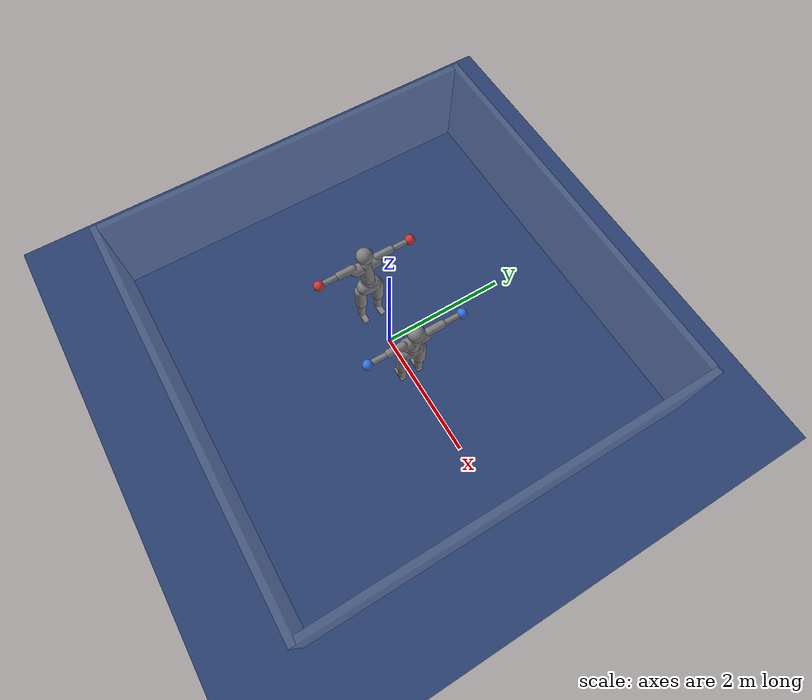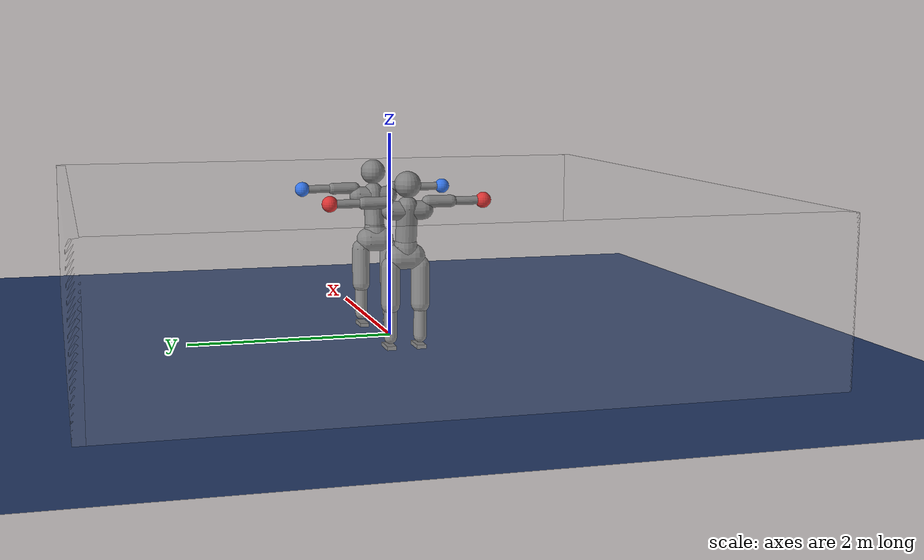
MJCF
<mujoco model="grandma_spar">
  <compiler angle="degree" inertiafromgeom="true" autolimits="true"/>
  <option timestep="0.005" iterations="10" ls_iterations="10" integrator="implicitfast">
    <flag eulerdamp="disable"/>
  </option>
  <default>
    <geom contype="1" conaffinity="1" condim="3" friction="1.0 0.005 0.0001" density="1000" margin="0"/>
    <joint limited="true"/>
    <position ctrllimited="true"/>
  </default>
  <asset>
    <texture name="grid" type="2d" builtin="checker" rgb1=".18 .28 .48" rgb2=".14 .22 .40" width="300" height="300"/>
    <material name="grid" texture="grid" texrepeat="6 6" reflectance="0"/>
  </asset>
  <worldbody>
    <light pos="0 0 5" dir="0 0 -1" directional="true"/>
    <geom name="floor" type="plane" size="0 0 0.05" material="grid" friction="1.0 0.005 0.0001"/>
    <geom name="rope_n" type="box" pos="0.0000 3.1000 0.7500" size="3.1500 0.0500 0.7500" rgba="0.8 0.8 0.8 0.15"/>
    <geom name="rope_s" type="box" pos="0.0000 -3.1000 0.7500" size="3.1500 0.0500 0.7500" rgba="0.8 0.8 0.8 0.15"/>
    <geom name="rope_e" type="box" pos="3.1000 0.0000 0.7500" size="0.0500 3.1500 0.7500" rgba="0.8 0.8 0.8 0.15"/>
    <geom name="rope_w" type="box" pos="-3.1000 0.0000 0.7500" size="0.0500 3.1500 0.7500" rgba="0.8 0.8 0.8 0.15"/>
    <body name="a_pelvis" pos="-0.6000 0.0000 0.8758" quat="1.00000 0 0 0.00000">
      <freejoint name="a_root"/>
      <geom name="a_pelvis_geom" type="capsule" fromto="0.0000 -0.0700 0.0000 0.0000 0.0700 0.0000" size="0.1216" mass="7.2734" />
      <geom name="a_pelvis_up" type="capsule" fromto="0.0000 0.0000 0.0000 -0.0203 0.0000 0.1106" size="0.1094" mass="5.0380" />
      <body name="a_torso" pos="-0.0203 0.0000 0.1306">
        <joint name="a_abdomen_z" type="hinge" axis="0 0 1" range="-45 45" damping="0.5" armature="0.08" stiffness="0"/>
        <joint name="a_abdomen_y" type="hinge" axis="0 1 0" range="-60 30" damping="0.5" armature="0.08" stiffness="0"/>
        <joint name="a_abdomen_x" type="hinge" axis="1 0 0" range="-35 35" damping="0.5" armature="0.08" stiffness="0"/>
        <geom name="a_torso_geom" type="capsule" fromto="0.0000 0.0000 0.0200 -0.0561 0.0000 0.3509" size="0.1004" mass="30.7785" />
        <geom name="a_chest_geom" type="capsule" fromto="-0.0509 -0.1584 0.3169 -0.0509 0.1584 0.3169" size="0.0904" mass="0.5"/>
        <geom name="a_head_geom" type="sphere" pos="-0.0666 0.0000 0.5613" size="0.1250" mass="7.0227" />
        <body name="a_upper_arm_l" pos="-0.0636 0.1980 0.3961">
          <joint name="a_shoulder_x_l" type="hinge" axis="1 0 0" range="-170 30" damping="0.5" armature="0.03" stiffness="0"/>
          <joint name="a_shoulder_z_l" type="hinge" axis="0 0 1" range="-110 110" damping="0.5" armature="0.03" stiffness="0"/>
          <geom name="a_upper_arm_l_geom" type="capsule" fromto="0.0000 0.0000 0.0000 0.0000 0.2236 0.0000" size="0.0580" mass="2.4276" />
          <body name="a_forearm_l" pos="0.0000 0.2236 0.0000">
            <joint name="a_elbow_l" type="hinge" axis="0 0 1" range="-150 0" damping="0.5" armature="0.02" stiffness="0"/>
            <geom name="a_forearm_l_geom" type="capsule" fromto="0.0000 0.0000 0.0000 0.0000 0.2519 0.0000" size="0.0402" mass="1.3872" />
            <geom name="a_glove_l" type="sphere" pos="0.0000 0.3194 0.0000" size="0.0750" mass="0.8032" rgba="0.85 0.2 0.2 1"/>
          </body>
        </body>
        <body name="a_upper_arm_r" pos="-0.0636 -0.1980 0.3961">
          <joint name="a_shoulder_x_r" type="hinge" axis="1 0 0" range="-30 170" damping="0.5" armature="0.03" stiffness="0"/>
          <joint name="a_shoulder_z_r" type="hinge" axis="0 0 1" range="-110 110" damping="0.5" armature="0.03" stiffness="0"/>
          <geom name="a_upper_arm_r_geom" type="capsule" fromto="0.0000 0.0000 0.0000 0.0000 -0.2236 0.0000" size="0.0580" mass="2.4276" />
          <body name="a_forearm_r" pos="0.0000 -0.2236 0.0000">
            <joint name="a_elbow_r" type="hinge" axis="0 0 1" range="0 150" damping="0.5" armature="0.02" stiffness="0"/>
            <geom name="a_forearm_r_geom" type="capsule" fromto="0.0000 0.0000 0.0000 0.0000 -0.2519 0.0000" size="0.0402" mass="1.3872" />
            <geom name="a_glove_r" type="sphere" pos="0.0000 -0.3194 0.0000" size="0.0750" mass="0.8032" rgba="0.85 0.2 0.2 1"/>
          </body>
        </body>
      </body>
      <body name="a_thigh_l" pos="-0.0109 0.1457 -0.0890">
        <joint name="a_hip_x_l" type="hinge" axis="1 0 0" range="-40 40" damping="0.5" armature="0.1" stiffness="0"/>
        <joint name="a_hip_z_l" type="hinge" axis="0 0 1" range="-35 35" damping="0.5" armature="0.1" stiffness="0"/>
        <joint name="a_hip_y_l" type="hinge" axis="0 1 0" range="-120 30" damping="0.5" armature="0.1" stiffness="0"/>
        <geom name="a_thigh_l_geom" type="capsule" fromto="0.0000 0.0000 0.0000 0.0000 0.0000 -0.3653" size="0.0900" mass="8.6700" />
        <body name="a_shin_l" pos="0.0000 0.0000 -0.3653">
          <joint name="a_knee_l" type="hinge" axis="0 1 0" range="0 150" damping="0.5" armature="0.1" stiffness="0"/>
          <geom name="a_shin_l_geom" type="capsule" fromto="0.0000 0.0000 0.0000 0.0000 0.0000 -0.3152" size="0.0620" mass="4.0316" />
          <body name="a_foot_l" pos="0.0000 0.0000 -0.3152">
            <joint name="a_ankle_y_l" type="hinge" axis="0 1 0" range="-20 50" damping="0.5" armature="0.03" stiffness="0"/>
            <joint name="a_ankle_x_l" type="hinge" axis="1 0 0" range="-25 25" damping="0.5" armature="0.03" stiffness="0"/>
            <geom name="a_foot_l_geom" type="box" pos="0.0506 0.0000 -0.1050" size="0.1100 0.0450 0.0280" mass="1.2572" friction="1.0 0.005 0.0001"/>
            <site name="a_foot_l_site" pos="0.0506 0.0000 -0.1050" size="0.01"/>
          </body>
        </body>
      </body>
      <body name="a_thigh_r" pos="-0.0109 -0.1457 -0.0890">
        <joint name="a_hip_x_r" type="hinge" axis="1 0 0" range="-40 40" damping="0.5" armature="0.1" stiffness="0"/>
        <joint name="a_hip_z_r" type="hinge" axis="0 0 1" range="-35 35" damping="0.5" armature="0.1" stiffness="0"/>
        <joint name="a_hip_y_r" type="hinge" axis="0 1 0" range="-120 30" damping="0.5" armature="0.1" stiffness="0"/>
        <geom name="a_thigh_r_geom" type="capsule" fromto="0.0000 0.0000 0.0000 0.0000 0.0000 -0.3653" size="0.0900" mass="8.6700" />
        <body name="a_shin_r" pos="0.0000 0.0000 -0.3653">
          <joint name="a_knee_r" type="hinge" axis="0 1 0" range="0 150" damping="0.5" armature="0.1" stiffness="0"/>
          <geom name="a_shin_r_geom" type="capsule" fromto="0.0000 0.0000 0.0000 0.0000 0.0000 -0.3152" size="0.0620" mass="4.0316" />
          <body name="a_foot_r" pos="0.0000 0.0000 -0.3152">
            <joint name="a_ankle_y_r" type="hinge" axis="0 1 0" range="-20 50" damping="0.5" armature="0.03" stiffness="0"/>
            <joint name="a_ankle_x_r" type="hinge" axis="1 0 0" range="-25 25" damping="0.5" armature="0.03" stiffness="0"/>
            <geom name="a_foot_r_geom" type="box" pos="0.0506 0.0000 -0.1050" size="0.1100 0.0450 0.0280" mass="1.2572" friction="1.0 0.005 0.0001"/>
            <site name="a_foot_r_site" pos="0.0506 0.0000 -0.1050" size="0.01"/>
          </body>
        </body>
      </body>
    </body>
    <body name="b_pelvis" pos="0.6000 0.0000 0.8758" quat="0.00000 0 0 1.00000">
      <freejoint name="b_root"/>
      <geom name="b_pelvis_geom" type="capsule" fromto="0.0000 -0.0700 0.0000 0.0000 0.0700 0.0000" size="0.1216" mass="7.2734" />
      <geom name="b_pelvis_up" type="capsule" fromto="0.0000 0.0000 0.0000 -0.0203 0.0000 0.1106" size="0.1094" mass="5.0380" />
      <body name="b_torso" pos="-0.0203 0.0000 0.1306">
        <joint name="b_abdomen_z" type="hinge" axis="0 0 1" range="-45 45" damping="0.5" armature="0.08" stiffness="0"/>
        <joint name="b_abdomen_y" type="hinge" axis="0 1 0" range="-60 30" damping="0.5" armature="0.08" stiffness="0"/>
        <joint name="b_abdomen_x" type="hinge" axis="1 0 0" range="-35 35" damping="0.5" armature="0.08" stiffness="0"/>
        <geom name="b_torso_geom" type="capsule" fromto="0.0000 0.0000 0.0200 -0.0561 0.0000 0.3509" size="0.1004" mass="30.7785" />
        <geom name="b_chest_geom" type="capsule" fromto="-0.0509 -0.1584 0.3169 -0.0509 0.1584 0.3169" size="0.0904" mass="0.5"/>
        <geom name="b_head_geom" type="sphere" pos="-0.0666 0.0000 0.5613" size="0.1250" mass="7.0227" />
        <body name="b_upper_arm_l" pos="-0.0636 0.1980 0.3961">
          <joint name="b_shoulder_x_l" type="hinge" axis="1 0 0" range="-170 30" damping="0.5" armature="0.03" stiffness="0"/>
          <joint name="b_shoulder_z_l" type="hinge" axis="0 0 1" range="-110 110" damping="0.5" armature="0.03" stiffness="0"/>
          <geom name="b_upper_arm_l_geom" type="capsule" fromto="0.0000 0.0000 0.0000 0.0000 0.2236 0.0000" size="0.0580" mass="2.4276" />
          <body name="b_forearm_l" pos="0.0000 0.2236 0.0000">
            <joint name="b_elbow_l" type="hinge" axis="0 0 1" range="-150 0" damping="0.5" armature="0.02" stiffness="0"/>
            <geom name="b_forearm_l_geom" type="capsule" fromto="0.0000 0.0000 0.0000 0.0000 0.2519 0.0000" size="0.0402" mass="1.3872" />
            <geom name="b_glove_l" type="sphere" pos="0.0000 0.3194 0.0000" size="0.0750" mass="0.8032" rgba="0.2 0.45 0.9 1"/>
          </body>
        </body>
        <body name="b_upper_arm_r" pos="-0.0636 -0.1980 0.3961">
          <joint name="b_shoulder_x_r" type="hinge" axis="1 0 0" range="-30 170" damping="0.5" armature="0.03" stiffness="0"/>
          <joint name="b_shoulder_z_r" type="hinge" axis="0 0 1" range="-110 110" damping="0.5" armature="0.03" stiffness="0"/>
          <geom name="b_upper_arm_r_geom" type="capsule" fromto="0.0000 0.0000 0.0000 0.0000 -0.2236 0.0000" size="0.0580" mass="2.4276" />
          <body name="b_forearm_r" pos="0.0000 -0.2236 0.0000">
            <joint name="b_elbow_r" type="hinge" axis="0 0 1" range="0 150" damping="0.5" armature="0.02" stiffness="0"/>
            <geom name="b_forearm_r_geom" type="capsule" fromto="0.0000 0.0000 0.0000 0.0000 -0.2519 0.0000" size="0.0402" mass="1.3872" />
            <geom name="b_glove_r" type="sphere" pos="0.0000 -0.3194 0.0000" size="0.0750" mass="0.8032" rgba="0.2 0.45 0.9 1"/>
          </body>
        </body>
      </body>
      <body name="b_thigh_l" pos="-0.0109 0.1457 -0.0890">
        <joint name="b_hip_x_l" type="hinge" axis="1 0 0" range="-40 40" damping="0.5" armature="0.1" stiffness="0"/>
        <joint name="b_hip_z_l" type="hinge" axis="0 0 1" range="-35 35" damping="0.5" armature="0.1" stiffness="0"/>
        <joint name="b_hip_y_l" type="hinge" axis="0 1 0" range="-120 30" damping="0.5" armature="0.1" stiffness="0"/>
        <geom name="b_thigh_l_geom" type="capsule" fromto="0.0000 0.0000 0.0000 0.0000 0.0000 -0.3653" size="0.0900" mass="8.6700" />
        <body name="b_shin_l" pos="0.0000 0.0000 -0.3653">
          <joint name="b_knee_l" type="hinge" axis="0 1 0" range="0 150" damping="0.5" armature="0.1" stiffness="0"/>
          <geom name="b_shin_l_geom" type="capsule" fromto="0.0000 0.0000 0.0000 0.0000 0.0000 -0.3152" size="0.0620" mass="4.0316" />
          <body name="b_foot_l" pos="0.0000 0.0000 -0.3152">
            <joint name="b_ankle_y_l" type="hinge" axis="0 1 0" range="-20 50" damping="0.5" armature="0.03" stiffness="0"/>
            <joint name="b_ankle_x_l" type="hinge" axis="1 0 0" range="-25 25" damping="0.5" armature="0.03" stiffness="0"/>
            <geom name="b_foot_l_geom" type="box" pos="0.0506 0.0000 -0.1050" size="0.1100 0.0450 0.0280" mass="1.2572" friction="1.0 0.005 0.0001"/>
            <site name="b_foot_l_site" pos="0.0506 0.0000 -0.1050" size="0.01"/>
          </body>
        </body>
      </body>
      <body name="b_thigh_r" pos="-0.0109 -0.1457 -0.0890">
        <joint name="b_hip_x_r" type="hinge" axis="1 0 0" range="-40 40" damping="0.5" armature="0.1" stiffness="0"/>
        <joint name="b_hip_z_r" type="hinge" axis="0 0 1" range="-35 35" damping="0.5" armature="0.1" stiffness="0"/>
        <joint name="b_hip_y_r" type="hinge" axis="0 1 0" range="-120 30" damping="0.5" armature="0.1" stiffness="0"/>
        <geom name="b_thigh_r_geom" type="capsule" fromto="0.0000 0.0000 0.0000 0.0000 0.0000 -0.3653" size="0.0900" mass="8.6700" />
        <body name="b_shin_r" pos="0.0000 0.0000 -0.3653">
          <joint name="b_knee_r" type="hinge" axis="0 1 0" range="0 150" damping="0.5" armature="0.1" stiffness="0"/>
          <geom name="b_shin_r_geom" type="capsule" fromto="0.0000 0.0000 0.0000 0.0000 0.0000 -0.3152" size="0.0620" mass="4.0316" />
          <body name="b_foot_r" pos="0.0000 0.0000 -0.3152">
            <joint name="b_ankle_y_r" type="hinge" axis="0 1 0" range="-20 50" damping="0.5" armature="0.03" stiffness="0"/>
            <joint name="b_ankle_x_r" type="hinge" axis="1 0 0" range="-25 25" damping="0.5" armature="0.03" stiffness="0"/>
            <geom name="b_foot_r_geom" type="box" pos="0.0506 0.0000 -0.1050" size="0.1100 0.0450 0.0280" mass="1.2572" friction="1.0 0.005 0.0001"/>
            <site name="b_foot_r_site" pos="0.0506 0.0000 -0.1050" size="0.01"/>
          </body>
        </body>
      </body>
    </body>
  </worldbody>
  <contact>
    <exclude body1="a_pelvis" body2="a_torso"/>
    <exclude body1="a_pelvis" body2="a_thigh_l"/>
    <exclude body1="a_thigh_l" body2="a_shin_l"/>
    <exclude body1="a_shin_l" body2="a_foot_l"/>
    <exclude body1="a_torso" body2="a_upper_arm_l"/>
    <exclude body1="a_upper_arm_l" body2="a_forearm_l"/>
    <exclude body1="a_pelvis" body2="a_thigh_r"/>
    <exclude body1="a_thigh_r" body2="a_shin_r"/>
    <exclude body1="a_shin_r" body2="a_foot_r"/>
    <exclude body1="a_torso" body2="a_upper_arm_r"/>
    <exclude body1="a_upper_arm_r" body2="a_forearm_r"/>
    <exclude body1="b_pelvis" body2="b_torso"/>
    <exclude body1="b_pelvis" body2="b_thigh_l"/>
    <exclude body1="b_thigh_l" body2="b_shin_l"/>
    <exclude body1="b_shin_l" body2="b_foot_l"/>
    <exclude body1="b_torso" body2="b_upper_arm_l"/>
    <exclude body1="b_upper_arm_l" body2="b_forearm_l"/>
    <exclude body1="b_pelvis" body2="b_thigh_r"/>
    <exclude body1="b_thigh_r" body2="b_shin_r"/>
    <exclude body1="b_shin_r" body2="b_foot_r"/>
    <exclude body1="b_torso" body2="b_upper_arm_r"/>
    <exclude body1="b_upper_arm_r" body2="b_forearm_r"/>
  </contact>
  <actuator>
    <position name="a_abdomen_z" joint="a_abdomen_z" kp="238.05" kv="11.109" forcerange="-89.93 89.93" ctrlrange="-0.7854 0.7854"/>
    <position name="a_abdomen_y" joint="a_abdomen_y" kp="238.05" kv="11.109" forcerange="-89.93 89.93" ctrlrange="-1.0472 0.5236"/>
    <position name="a_abdomen_x" joint="a_abdomen_x" kp="238.05" kv="11.109" forcerange="-89.93 89.93" ctrlrange="-0.6109 0.6109"/>
    <position name="a_shoulder_x_l" joint="a_shoulder_x_l" kp="84.64" kv="4.232" forcerange="-52.9 52.9" ctrlrange="-2.9671 0.5236"/>
    <position name="a_shoulder_z_l" joint="a_shoulder_z_l" kp="84.64" kv="4.232" forcerange="-52.9 52.9" ctrlrange="-1.9199 1.9199"/>
    <position name="a_elbow_l" joint="a_elbow_l" kp="58.19" kv="2.909" forcerange="-37.03 37.03" ctrlrange="-2.6180 0.0000"/>
    <position name="a_shoulder_x_r" joint="a_shoulder_x_r" kp="84.64" kv="4.232" forcerange="-52.9 52.9" ctrlrange="-0.5236 2.9671"/>
    <position name="a_shoulder_z_r" joint="a_shoulder_z_r" kp="84.64" kv="4.232" forcerange="-52.9 52.9" ctrlrange="-1.9199 1.9199"/>
    <position name="a_elbow_r" joint="a_elbow_r" kp="58.19" kv="2.909" forcerange="-37.03 37.03" ctrlrange="0.0000 2.6180"/>
    <position name="a_hip_x_l" joint="a_hip_x_l" kp="317.4" kv="15.87" forcerange="-126.96 126.96" ctrlrange="-0.6981 0.6981"/>
    <position name="a_hip_z_l" joint="a_hip_z_l" kp="317.4" kv="15.87" forcerange="-126.96 126.96" ctrlrange="-0.6109 0.6109"/>
    <position name="a_hip_y_l" joint="a_hip_y_l" kp="317.4" kv="15.87" forcerange="-126.96 126.96" ctrlrange="-2.0944 0.5236"/>
    <position name="a_knee_l" joint="a_knee_l" kp="317.4" kv="15.87" forcerange="-137.54 137.54" ctrlrange="0.0000 2.6180"/>
    <position name="a_ankle_y_l" joint="a_ankle_y_l" kp="396.75" kv="15.87" forcerange="-116.38 116.38" ctrlrange="-0.3491 0.8727"/>
    <position name="a_ankle_x_l" joint="a_ankle_x_l" kp="42.32" kv="2.116" forcerange="-31.74 31.74" ctrlrange="-0.4363 0.4363"/>
    <position name="a_hip_x_r" joint="a_hip_x_r" kp="317.4" kv="15.87" forcerange="-126.96 126.96" ctrlrange="-0.6981 0.6981"/>
    <position name="a_hip_z_r" joint="a_hip_z_r" kp="317.4" kv="15.87" forcerange="-126.96 126.96" ctrlrange="-0.6109 0.6109"/>
    <position name="a_hip_y_r" joint="a_hip_y_r" kp="317.4" kv="15.87" forcerange="-126.96 126.96" ctrlrange="-2.0944 0.5236"/>
    <position name="a_knee_r" joint="a_knee_r" kp="317.4" kv="15.87" forcerange="-137.54 137.54" ctrlrange="0.0000 2.6180"/>
    <position name="a_ankle_y_r" joint="a_ankle_y_r" kp="396.75" kv="15.87" forcerange="-116.38 116.38" ctrlrange="-0.3491 0.8727"/>
    <position name="a_ankle_x_r" joint="a_ankle_x_r" kp="42.32" kv="2.116" forcerange="-31.74 31.74" ctrlrange="-0.4363 0.4363"/>
    <position name="b_abdomen_z" joint="b_abdomen_z" kp="238.05" kv="11.109" forcerange="-89.93 89.93" ctrlrange="-0.7854 0.7854"/>
    <position name="b_abdomen_y" joint="b_abdomen_y" kp="238.05" kv="11.109" forcerange="-89.93 89.93" ctrlrange="-1.0472 0.5236"/>
    <position name="b_abdomen_x" joint="b_abdomen_x" kp="238.05" kv="11.109" forcerange="-89.93 89.93" ctrlrange="-0.6109 0.6109"/>
    <position name="b_shoulder_x_l" joint="b_shoulder_x_l" kp="84.64" kv="4.232" forcerange="-52.9 52.9" ctrlrange="-2.9671 0.5236"/>
    <position name="b_shoulder_z_l" joint="b_shoulder_z_l" kp="84.64" kv="4.232" forcerange="-52.9 52.9" ctrlrange="-1.9199 1.9199"/>
    <position name="b_elbow_l" joint="b_elbow_l" kp="58.19" kv="2.909" forcerange="-37.03 37.03" ctrlrange="-2.6180 0.0000"/>
    <position name="b_shoulder_x_r" joint="b_shoulder_x_r" kp="84.64" kv="4.232" forcerange="-52.9 52.9" ctrlrange="-0.5236 2.9671"/>
    <position name="b_shoulder_z_r" joint="b_shoulder_z_r" kp="84.64" kv="4.232" forcerange="-52.9 52.9" ctrlrange="-1.9199 1.9199"/>
    <position name="b_elbow_r" joint="b_elbow_r" kp="58.19" kv="2.909" forcerange="-37.03 37.03" ctrlrange="0.0000 2.6180"/>
    <position name="b_hip_x_l" joint="b_hip_x_l" kp="317.4" kv="15.87" forcerange="-126.96 126.96" ctrlrange="-0.6981 0.6981"/>
    <position name="b_hip_z_l" joint="b_hip_z_l" kp="317.4" kv="15.87" forcerange="-126.96 126.96" ctrlrange="-0.6109 0.6109"/>
    <position name="b_hip_y_l" joint="b_hip_y_l" kp="317.4" kv="15.87" forcerange="-126.96 126.96" ctrlrange="-2.0944 0.5236"/>
    <position name="b_knee_l" joint="b_knee_l" kp="317.4" kv="15.87" forcerange="-137.54 137.54" ctrlrange="0.0000 2.6180"/>
    <position name="b_ankle_y_l" joint="b_ankle_y_l" kp="396.75" kv="15.87" forcerange="-116.38 116.38" ctrlrange="-0.3491 0.8727"/>
    <position name="b_ankle_x_l" joint="b_ankle_x_l" kp="42.32" kv="2.116" forcerange="-31.74 31.74" ctrlrange="-0.4363 0.4363"/>
    <position name="b_hip_x_r" joint="b_hip_x_r" kp="317.4" kv="15.87" forcerange="-126.96 126.96" ctrlrange="-0.6981 0.6981"/>
    <position name="b_hip_z_r" joint="b_hip_z_r" kp="317.4" kv="15.87" forcerange="-126.96 126.96" ctrlrange="-0.6109 0.6109"/>
    <position name="b_hip_y_r" joint="b_hip_y_r" kp="317.4" kv="15.87" forcerange="-126.96 126.96" ctrlrange="-2.0944 0.5236"/>
    <position name="b_knee_r" joint="b_knee_r" kp="317.4" kv="15.87" forcerange="-137.54 137.54" ctrlrange="0.0000 2.6180"/>
    <position name="b_ankle_y_r" joint="b_ankle_y_r" kp="396.75" kv="15.87" forcerange="-116.38 116.38" ctrlrange="-0.3491 0.8727"/>
    <position name="b_ankle_x_r" joint="b_ankle_x_r" kp="42.32" kv="2.116" forcerange="-31.74 31.74" ctrlrange="-0.4363 0.4363"/>
  </actuator>
  <keyframe>
    <key name="stand" qpos="-0.6000 0.0000 0.8853 1.00000 0 0 0.00000 0.0000 0.0000 0.0000 -1.3265 -0.7330 -1.9548 1.3265 0.7330 1.9548 0.0000 0.0000 -0.1352 0.4538 -0.3186 0.0000 0.0000 0.0000 -0.1352 0.4538 -0.3186 0.0000 0.6000 0.0000 0.8853 0.00000 0 0 1.00000 0.0000 0.0000 0.0000 -1.3265 -0.7330 -1.9548 1.3265 0.7330 1.9548 0.0000 0.0000 -0.1352 0.4538 -0.3186 0.0000 0.0000 0.0000 -0.1352 0.4538 -0.3186 0.0000"/>
  </keyframe>
</mujoco>
